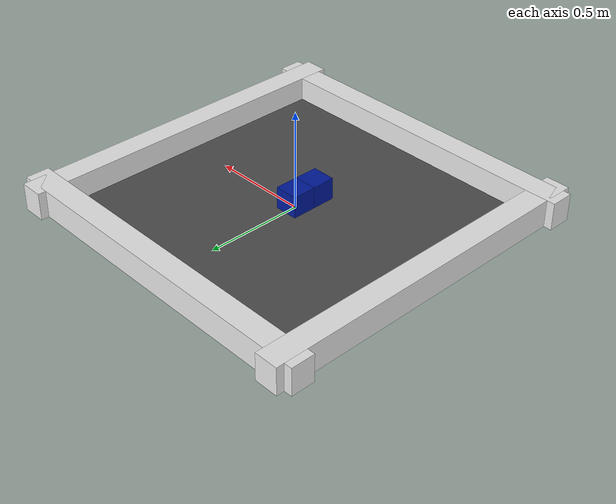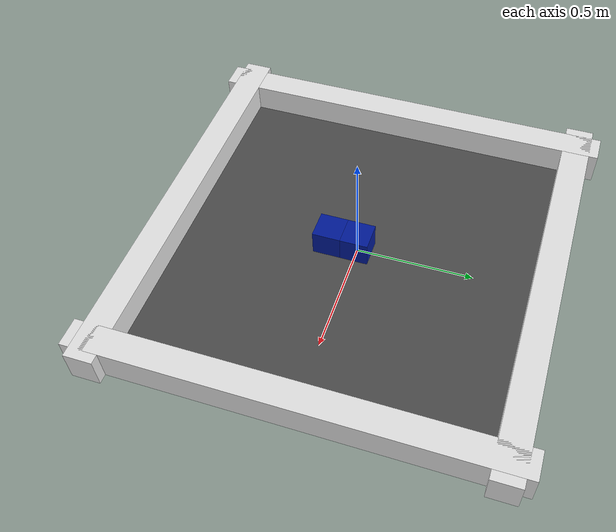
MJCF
<mujoco>
    <compiler angle="radian" coordinate="global" inertiafromgeom="true" meshdir="mesh" texturedir="textures" />
    <option gravity="0 0 -9.81" integrator="Euler" iterations="20" timestep=".01" />

    <default>
        <joint armature="0.04" damping="1" limited="true" />
        <geom conaffinity="0" condim="1" contype="0" density="10" friction=".8 .1 .1" margin="0.002" />
    </default>
    <worldbody>
        <light cutoff="100" diffuse="1 1 1" dir="-0 0 -1" directional="true" exponent="1" pos="0 0 0.0" specular=".1 .1 .1"/>

        <camera name='targeting' mode='fixed' pos='0. 0. 5.'/>

        <geom rgba="0.3 0.3 .3 1." conaffinity="1" density='0.' contype="1" condim="1" name="table" pos="0 0 0" size=".8 .8 0.1" type="plane" />

        <body name="obj1">
            <joint axis="0 0 1" damping="1.5" name="obj1_hinge" pos="0 0 0.05" range="-10.3213 10.3" type="hinge" />
            <joint axis="1 0 0" damping="1.5" name="obj1_slidex" pos="0 0 0.05" range="-10.3213 10.3" type="slide" />
            <joint axis="0 1 0" damping="1.5" name="obj1_slidey" pos="0 0 0.05" range="-10.3213 10.3" type="slide" />

            <geom name='b1' conaffinity="1" contype="1" pos="0 0 0.05" size="0.06 0.06 0.06" rgba=".0 .1 .6 1" type="box" />
            <geom name='b2' conaffinity="1" contype="1" pos="0 -.12 0.05" size="0.06 0.06 0.06" rgba=".0 .1 .6 1" type="box" />

            <geom name='b3' conaffinity="1" contype="1" pos="0 .0 0.05" size="0.006 0.006 0.006" rgba="1 1 0 0" type="box" />
            <geom name='b4' conaffinity="1" contype="1" pos=".0 .0 0.05" size="0.006 0.006 0.006" rgba=".0 .1 .6 0" type="box" />
            <geom name='b5' conaffinity="1" contype="1" pos=".0 .0 0.05" size="0.006 0.006 0.006" rgba=".0 .1 .6 0" type="box" />
            <geom name='b6' conaffinity="1" contype="1" pos=".0 .0 0.05" size="0.006 0.006 0.006" rgba=".0 .1 .6 0" type="box" />
            <geom name='b7' conaffinity="1" contype="1" pos=".0 .0 0.05" size="0.006 0.006 0.006" rgba=".0 .1 .6 0" type="box" />
            <geom name='b8' conaffinity="1" contype="1" pos=".0 .0 0.05" size="0.006 0.006 0.006" rgba=".0 .1 .6 0" type="box" />
            <geom name='b9' conaffinity="1" contype="1" pos=".0 .0 0.05" size="0.006 0.006 0.006" rgba=".0 .1 .6 0" type="box" />
            <geom name='b10' conaffinity="1" contype="1" pos=".0 .0 0.05" size="0.006 0.006 0.006" rgba=".0 .1 .6 0" type="box" />
            <geom name='b11' conaffinity="1" contype="1" pos=".0 .0 0.05" size="0.006 0.006 0.006" rgba=".0 .1 .6 0" type="box" />
            <geom name='b12' conaffinity="1" contype="1" pos=".0 .0 0.05" size="0.006 0.006 0.006" rgba=".0 .1 .6 0" type="box" />

            <joint axis="0 0 1" damping="1.5" name="obj2_slidex" pos=".0 .0 0" range="-10.3213 10.3" type="hinge" />

        </body>
        <body name="obs">
            <geom name ='o1' conaffinity="1" contype="1" pos=".0 .47 0.05" rgba="0 0 0 0" size="0.06 0.3 0.07" type="box" />
            <geom name ='o2' conaffinity="1" contype="1" pos=".0 -.47 0.05" rgba="0 0 0 0" size="0.06 0.3 0.07" type="box" />
            <geom conaffinity="1" contype="1" name="north" pos=".0 0.8 0.05" rgba=".9 .9 .9 1" size=".9 0.06 0.07" type="box" />
            <geom conaffinity="1" contype="1" name="south" pos=".0 -0.8 0.05" rgba=".9 .9 .9 1" size=".9 0.06 0.07" type="box" />
            <geom conaffinity="1" contype="1" name="east" pos=".8 0. 0.05" rgba=".9 .9 .9 1" size="0.06 .9 0.07" type="box" />
            <geom conaffinity="1" contype="1" name="west" pos="-.8 0. 0.05" rgba=".9 .9 .9 1" size="0.06 .9 0.07" type="box" />

        </body>

    </worldbody>

    <actuator>

        <motor ctrllimited="true" ctrlrange="-1 1" gear="50.0" joint="obj2_slidex"/>
        <motor ctrllimited="true" ctrlrange="-1 1" gear="18.0" joint="obj1_slidex"/>
        <motor ctrllimited="true" ctrlrange="-1 1" gear="18.0" joint="obj1_slidey"/>
        <motor ctrllimited="true" ctrlrange="-1 1" gear="50.0" joint="obj1_hinge"/>

    </actuator>

</mujoco>
